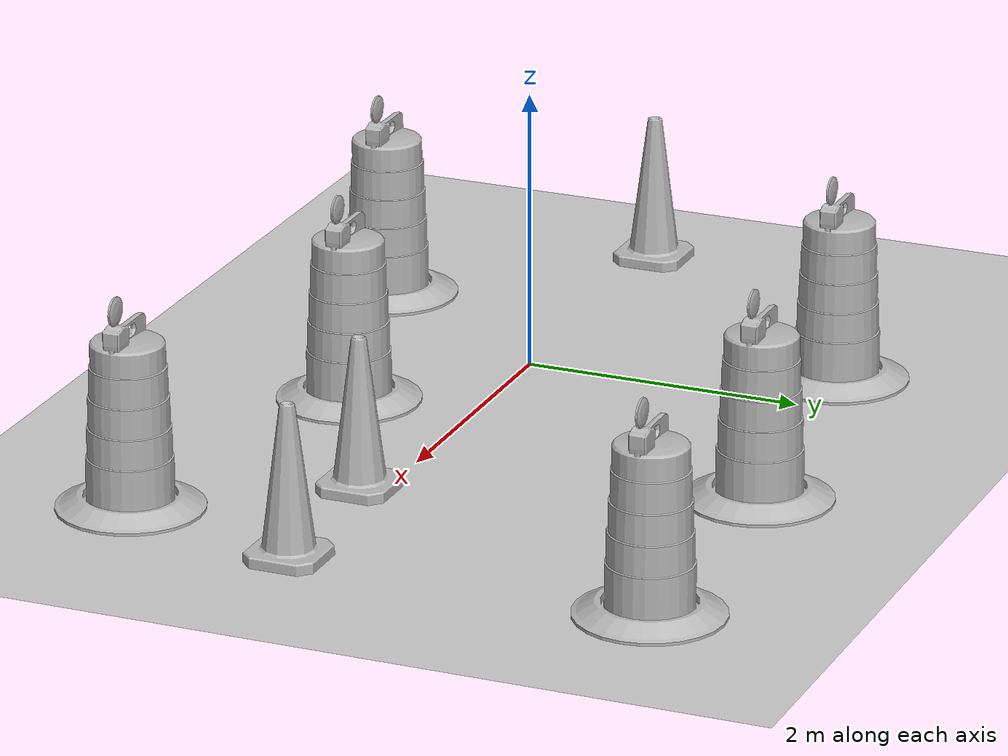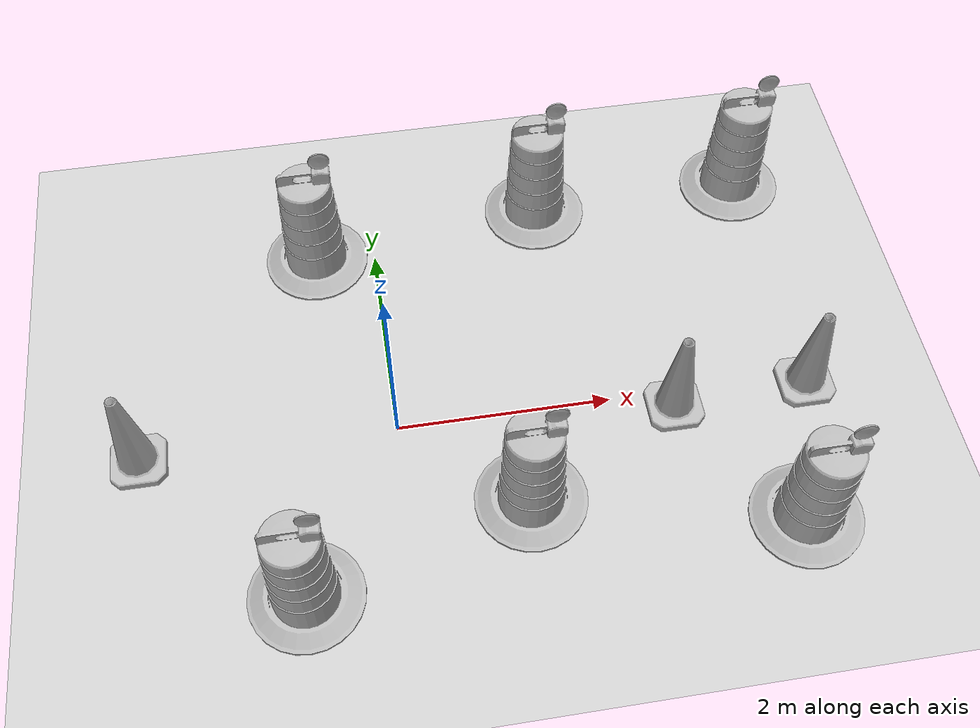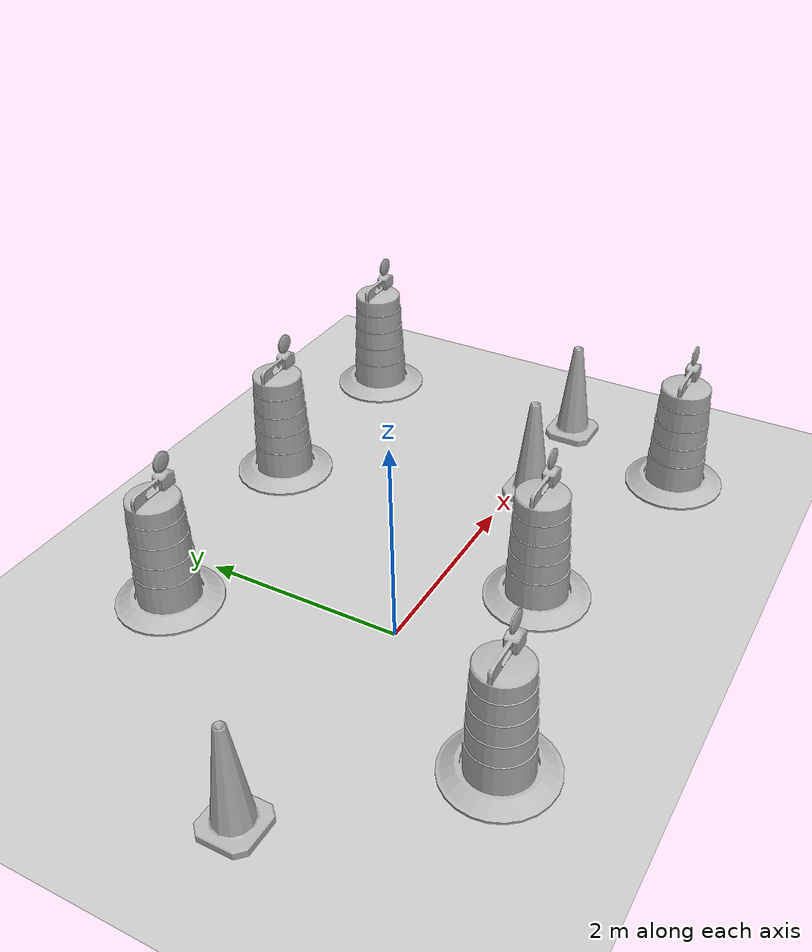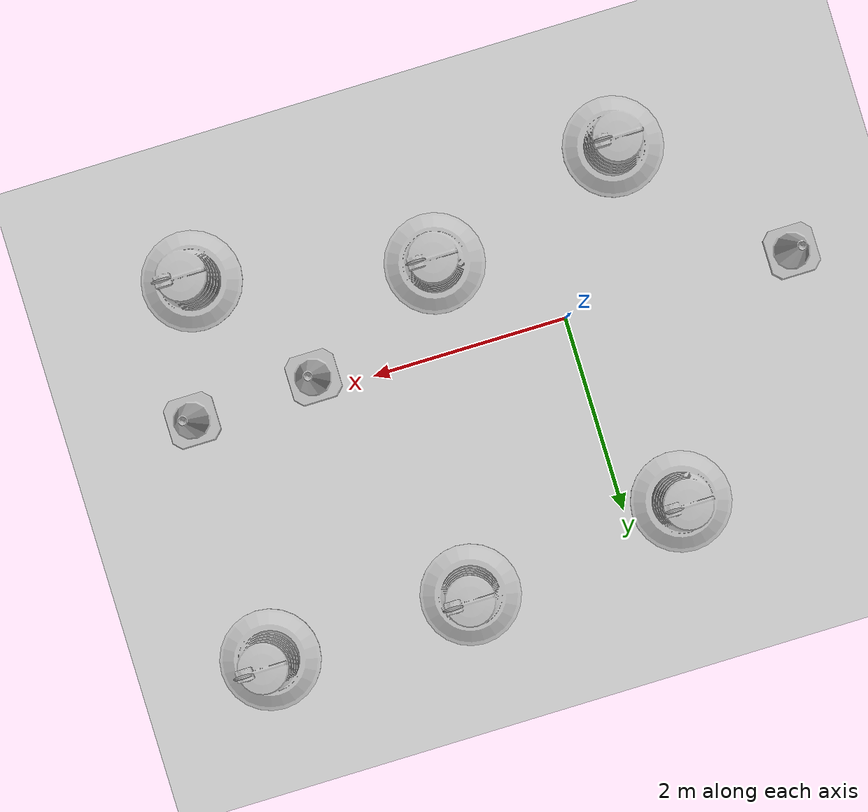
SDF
<sdf version="1.7">
 <world name="default">
  <light name="sun" type="directional">
   <pose>0 0 10 0 -0 0</pose>
   <diffuse>0.8 0.8 0.8 1</diffuse>
   <specular>0.2 0.2 0.2 1</specular>
   <attenuation>
    <range>1000</range>
    <constant>0.9</constant>
    <linear>0.01</linear>
    <quadratic>0.001</quadratic>
   </attenuation>
   <direction>-0.5 0.1 -0.9</direction>
   <spot><inner_angle>0</inner_angle><outer_angle>0</outer_angle><falloff>0</falloff></spot>
  </light>
  <model name="ground_plane">
   <static>1</static>
   <link name="link">
    <collision name="collision">
     <geometry><plane><normal>0 0 1</normal><size>100 100</size></plane></geometry>
     <surface>
      <contact><collide_bitmask>65535</collide_bitmask></contact>
      <friction><ode><mu>100</mu><mu2>50</mu2></ode></friction>
     </surface>
    </collision>
    <visual name="visual">
     <cast_shadows>0</cast_shadows>
     <geometry><plane><normal>0 0 1</normal><size>100 100</size></plane></geometry>
     <material>
      <script><uri>file://media/materials/scripts/gazebo.material</uri><name>Gazebo/Grey</name></script>
     </material>
    </visual>
   </link>
  </model>
  <gravity>0 0 -9.8</gravity>
  <magnetic_field>6e-06 2.3e-05 -4.2e-05</magnetic_field>
  <atmosphere type="adiabatic"/>
  <physics type="ode">
   <max_step_size>0.001</max_step_size>
   <real_time_factor>1</real_time_factor>
   <real_time_update_rate>1000</real_time_update_rate>
  </physics>
  <scene><ambient>0.4 0.4 0.4 1</ambient><background>0.7 0.7 0.7 1</background><shadows>1</shadows></scene>
  <audio><device>default</device></audio>
  <spherical_coordinates>
   <surface_model>EARTH_WGS84</surface_model>
   <latitude_deg>0</latitude_deg>
   <longitude_deg>0</longitude_deg>
   <elevation>0</elevation>
   <heading_deg>0</heading_deg>
  </spherical_coordinates>
  <model name="Construction Barrel">
   <link name="link">
    <inertial>
     <pose>0 0 0.4 0 -0 0</pose>
     <mass>500</mass>
     <inertia><ixx>51.2096</ixx><iyy>51.2096</iyy><izz>25</izz><ixy>0</ixy><ixz>0</ixz><iyz>0</iyz></inertia>
    </inertial>
    <collision name="collision">
     <geometry><mesh><uri>model://construction_barrel/meshes/construction_barrel.dae</uri></mesh></geometry>
    </collision>
    <visual name="visual">
     <geometry><mesh><uri>model://construction_barrel/meshes/construction_barrel.dae</uri></mesh></geometry>
    </visual>
   </link>
   <pose>1.70649 2.36642 0 0 0 -1.5e-05</pose>
  </model>
  <model name="Construction Cone">
   <link name="link">
    <collision name="collision">
     <geometry>
      <mesh><scale>10 10 10</scale><uri>model://construction_cone/meshes/construction_cone.dae</uri></mesh>
     </geometry>
    </collision>
    <visual name="visual">
     <geometry>
      <mesh><scale>10 10 10</scale><uri>model://construction_cone/meshes/construction_cone.dae</uri></mesh>
     </geometry>
    </visual>
    <inertial>
     <inertia><ixx>1</ixx><ixy>0</ixy><ixz>0</ixz><iyy>1</iyy><iyz>0</iyz><izz>1</izz></inertia>
     <mass>1</mass>
    </inertial>
   </link>
   <pose>2.5761 -0.165487 0 -0 -0 -0</pose>
  </model>
  <model name="Construction Barrel_0">
   <link name="link">
    <inertial>
     <pose>0 0 0.4 0 -0 0</pose>
     <mass>500</mass>
     <inertia><ixx>51.2096</ixx><iyy>51.2096</iyy><izz>25</izz><ixy>0</ixy><ixz>0</ixz><iyz>0</iyz></inertia>
    </inertial>
    <collision name="collision">
     <geometry><mesh><uri>model://construction_barrel/meshes/construction_barrel.dae</uri></mesh></geometry>
    </collision>
    <visual name="visual">
     <geometry><mesh><uri>model://construction_barrel/meshes/construction_barrel.dae</uri></mesh></geometry>
    </visual>
   </link>
   <pose>-0.576226 2.08553 -1e-06 0 5e-06 -1e-05</pose>
  </model>
  <model name="Construction Barrel_1">
   <link name="link">
    <inertial>
     <pose>0 0 0.4 0 -0 0</pose>
     <mass>500</mass>
     <inertia><ixx>51.2096</ixx><iyy>51.2096</iyy><izz>25</izz><ixy>0</ixy><ixz>0</ixz><iyz>0</iyz></inertia>
    </inertial>
    <collision name="collision">
     <geometry><mesh><uri>model://construction_barrel/meshes/construction_barrel.dae</uri></mesh></geometry>
    </collision>
    <visual name="visual">
     <geometry><mesh><uri>model://construction_barrel/meshes/construction_barrel.dae</uri></mesh></geometry>
    </visual>
   </link>
   <pose>3.80713 2.40698 -1e-06 0 5e-06 -1e-05</pose>
  </model>
  <model name="Construction Barrel_2">
   <link name="link">
    <inertial>
     <pose>0 0 0.4 0 -0 0</pose>
     <mass>500</mass>
     <inertia><ixx>51.2096</ixx><iyy>51.2096</iyy><izz>25</izz><ixy>0</ixy><ixz>0</ixz><iyz>0</iyz></inertia>
    </inertial>
    <collision name="collision">
     <geometry><mesh><uri>model://construction_barrel/meshes/construction_barrel.dae</uri></mesh></geometry>
    </collision>
    <visual name="visual">
     <geometry><mesh><uri>model://construction_barrel/meshes/construction_barrel.dae</uri></mesh></geometry>
    </visual>
   </link>
   <pose>1.08824 -0.903663 -2e-06 -0 7e-06 -8e-06</pose>
  </model>
  <model name="Construction Barrel_3">
   <link name="link">
    <inertial>
     <pose>0 0 0.4 0 -0 0</pose>
     <mass>500</mass>
     <inertia><ixx>51.2096</ixx><iyy>51.2096</iyy><izz>25</izz><ixy>0</ixy><ixz>0</ixz><iyz>0</iyz></inertia>
    </inertial>
    <collision name="collision">
     <geometry><mesh><uri>model://construction_barrel/meshes/construction_barrel.dae</uri></mesh></geometry>
    </collision>
    <visual name="visual">
     <geometry><mesh><uri>model://construction_barrel/meshes/construction_barrel.dae</uri></mesh></geometry>
    </visual>
   </link>
   <pose>-0.953914 -1.50376 -1e-06 3e-06 1e-05 -7e-06</pose>
  </model>
  <model name="Construction Barrel_4">
   <link name="link">
    <inertial>
     <pose>0 0 0.4 0 -0 0</pose>
     <mass>500</mass>
     <inertia><ixx>51.2096</ixx><iyy>51.2096</iyy><izz>25</izz><ixy>0</ixy><ixz>0</ixz><iyz>0</iyz></inertia>
    </inertial>
    <collision name="collision">
     <geometry><mesh><uri>model://construction_barrel/meshes/construction_barrel.dae</uri></mesh></geometry>
    </collision>
    <visual name="visual">
     <geometry><mesh><uri>model://construction_barrel/meshes/construction_barrel.dae</uri></mesh></geometry>
    </visual>
   </link>
   <pose>3.4616 -1.43884 1e-06 2e-06 3e-06 -6e-06</pose>
  </model>
  <model name="Construction Cone_0">
   <link name="link">
    <collision name="collision">
     <geometry>
      <mesh><scale>10 10 10</scale><uri>model://construction_cone/meshes/construction_cone.dae</uri></mesh>
     </geometry>
    </collision>
    <visual name="visual">
     <geometry>
      <mesh><scale>10 10 10</scale><uri>model://construction_cone/meshes/construction_cone.dae</uri></mesh>
     </geometry>
    </visual>
    <inertial>
     <inertia><ixx>1</ixx><ixy>0</ixy><ixz>0</ixz><iyy>1</iyy><iyz>0</iyz><izz>1</izz></inertia>
     <mass>1</mass>
    </inertial>
   </link>
   <pose>-2.35543 0.013618 -0 0 -0 0</pose>
  </model>
  <model name="Construction Cone_1">
   <link name="link">
    <collision name="collision">
     <geometry>
      <mesh><scale>10 10 10</scale><uri>model://construction_cone/meshes/construction_cone.dae</uri></mesh>
     </geometry>
    </collision>
    <visual name="visual">
     <geometry>
      <mesh><scale>10 10 10</scale><uri>model://construction_cone/meshes/construction_cone.dae</uri></mesh>
     </geometry>
    </visual>
    <inertial>
     <inertia><ixx>1</ixx><ixy>0</ixy><ixz>0</ixz><iyy>1</iyy><iyz>0</iyz><izz>1</izz></inertia>
     <mass>1</mass>
    </inertial>
   </link>
   <pose>3.85869 -0.104058 -0 0 -1e-06 0</pose>
  </model>
 </world>
</sdf>
